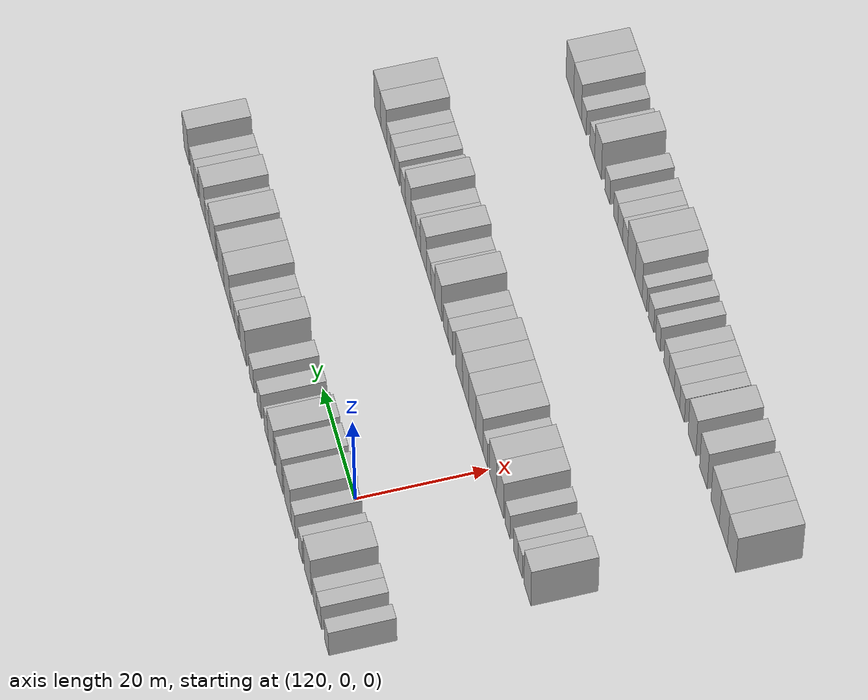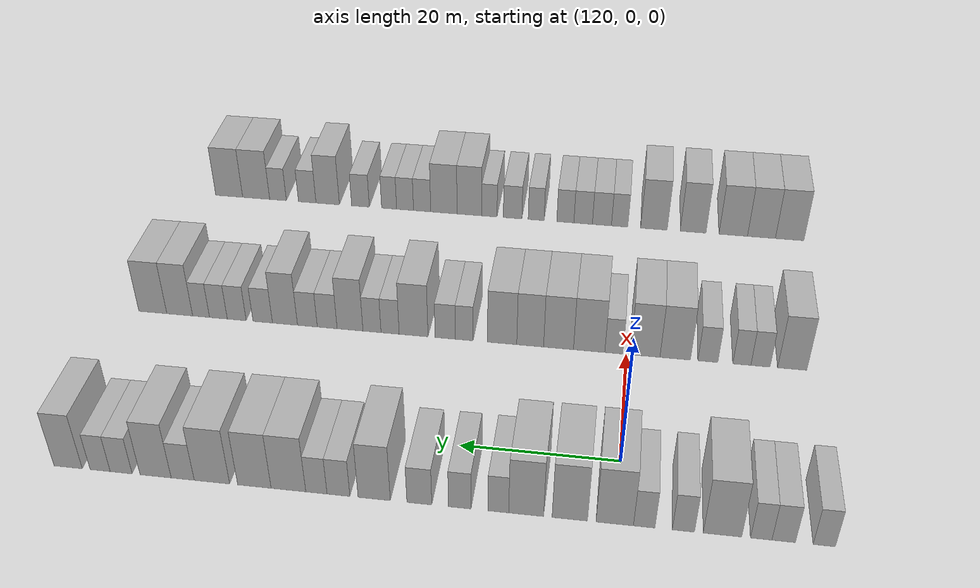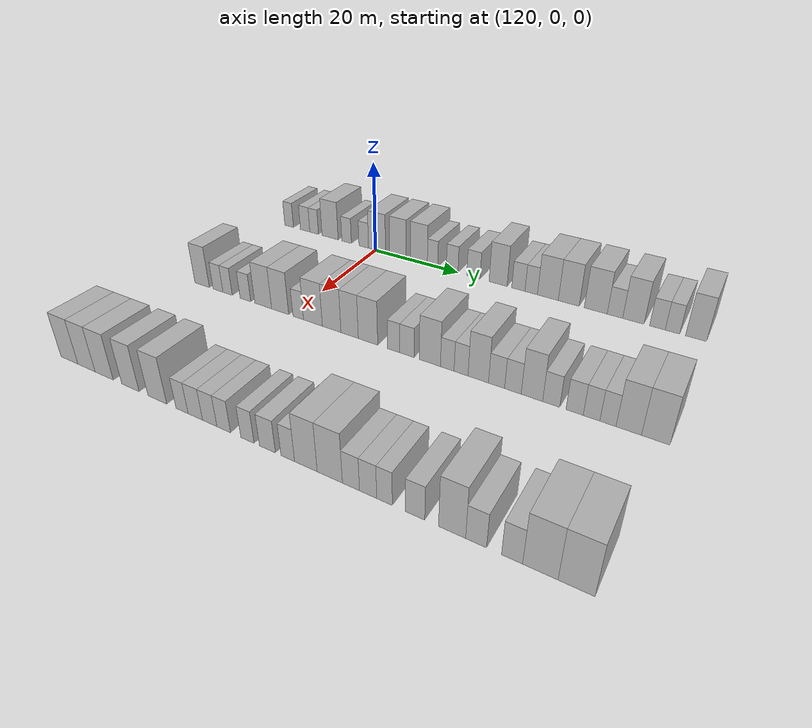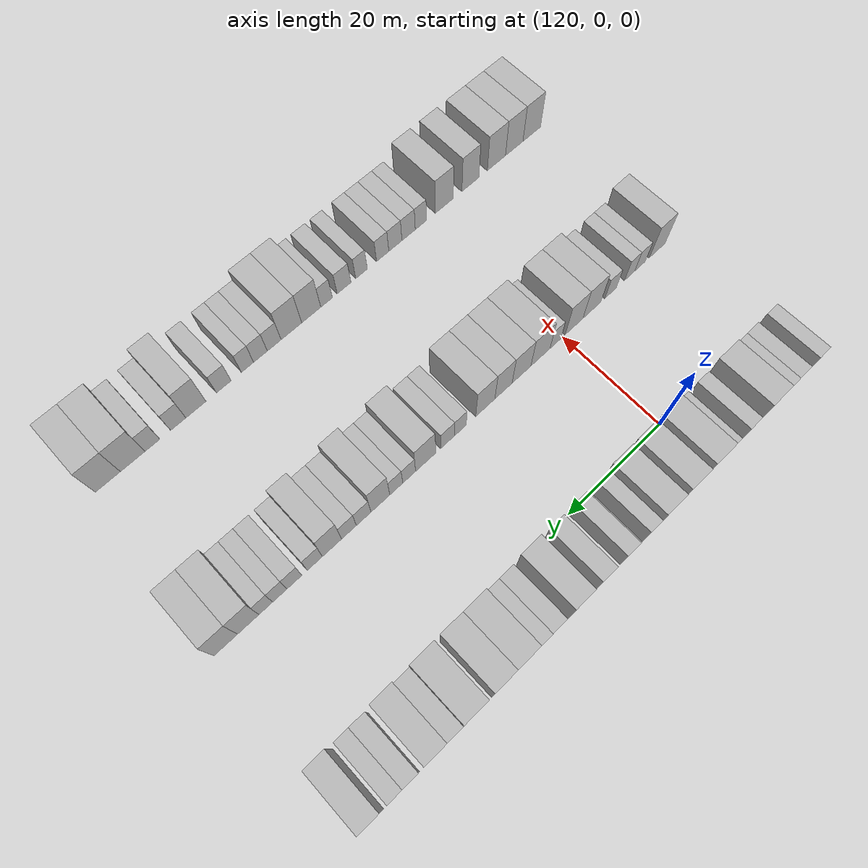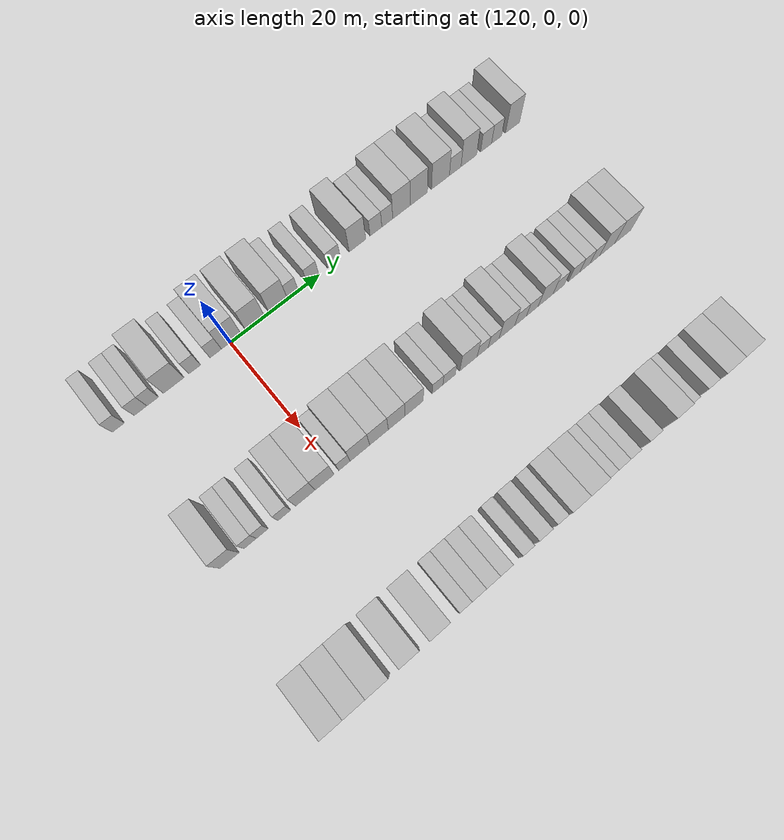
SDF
<sdf version="1.6">
 <world name="default">
  <model name="building_783">
   <static>1</static>
   <pose>115.0000 -23.6118 0 0.000000 0.000000 0.000000</pose>
   <link name="link">
    <pose>0 0 3.00 0 0 0</pose>
    <collision name="collision"><geometry><box><size>10.0000 2.4870 6.0000</size></box></geometry></collision>
    <visual name="visual">
     <cast_shadows>0</cast_shadows>
     <geometry><box><size>10.0000 2.4870 6.0000</size></box></geometry>
     <material>
      <script>
       <uri>model://HANNAS_wall/materials/scripts</uri>
       <uri>model://HANNAS_wall/materials/textures</uri>
       <name>vrc/HANNAS_wall</name>
      </script>
     </material>
    </visual>
   </link>
  </model>
  <model name="building_784">
   <static>1</static>
   <pose>115.0000 -19.0447 0 0.000000 0.000000 0.000000</pose>
   <link name="link">
    <pose>0 0 3.00 0 0 0</pose>
    <collision name="collision"><geometry><box><size>10.0000 2.6472 6.0000</size></box></geometry></collision>
    <visual name="visual">
     <cast_shadows>0</cast_shadows>
     <geometry><box><size>10.0000 2.6472 6.0000</size></box></geometry>
     <material>
      <script>
       <uri>model://HANNAS_wall/materials/scripts</uri>
       <uri>model://HANNAS_wall/materials/textures</uri>
       <name>vrc/HANNAS_wall</name>
      </script>
     </material>
    </visual>
   </link>
  </model>
  <model name="building_785">
   <static>1</static>
   <pose>115.0000 -16.5064 0 0.000000 0.000000 0.000000</pose>
   <link name="link">
    <pose>0 0 3.00 0 0 0</pose>
    <collision name="collision"><geometry><box><size>10.0000 2.4293 6.0000</size></box></geometry></collision>
    <visual name="visual">
     <cast_shadows>0</cast_shadows>
     <geometry><box><size>10.0000 2.4293 6.0000</size></box></geometry>
     <material>
      <script>
       <uri>model://HANNAS_wall/materials/scripts</uri>
       <uri>model://HANNAS_wall/materials/textures</uri>
       <name>vrc/HANNAS_wall</name>
      </script>
     </material>
    </visual>
   </link>
  </model>
  <model name="building_786">
   <static>1</static>
   <pose>115.0000 -12.0969 0 0.000000 0.000000 0.000000</pose>
   <link name="link">
    <pose>0 0 4.50 0 0 0</pose>
    <collision name="collision"><geometry><box><size>10.0000 4.3895 9.0000</size></box></geometry></collision>
    <visual name="visual">
     <cast_shadows>0</cast_shadows>
     <geometry><box><size>10.0000 4.3895 9.0000</size></box></geometry>
     <material>
      <script>
       <uri>model://HANNAS_wall/materials/scripts</uri>
       <uri>model://HANNAS_wall/materials/textures</uri>
       <name>vrc/HANNAS_wall</name>
      </script>
     </material>
    </visual>
   </link>
  </model>
  <model name="building_787">
   <static>1</static>
   <pose>115.0000 -7.6303 0 0.000000 0.000000 0.000000</pose>
   <link name="link">
    <pose>0 0 3.00 0 0 0</pose>
    <collision name="collision"><geometry><box><size>10.0000 2.5437 6.0000</size></box></geometry></collision>
    <visual name="visual">
     <cast_shadows>0</cast_shadows>
     <geometry><box><size>10.0000 2.5437 6.0000</size></box></geometry>
     <material>
      <script>
       <uri>model://HANNAS_wall/materials/scripts</uri>
       <uri>model://HANNAS_wall/materials/textures</uri>
       <name>vrc/HANNAS_wall</name>
      </script>
     </material>
    </visual>
   </link>
  </model>
  <model name="building_788">
   <static>1</static>
   <pose>115.0000 -3.1162 0 0.000000 0.000000 0.000000</pose>
   <link name="link">
    <pose>0 0 3.00 0 0 0</pose>
    <collision name="collision"><geometry><box><size>10.0000 2.4846 6.0000</size></box></geometry></collision>
    <visual name="visual">
     <cast_shadows>0</cast_shadows>
     <geometry><box><size>10.0000 2.4846 6.0000</size></box></geometry>
     <material>
      <script>
       <uri>model://HANNAS_wall/materials/scripts</uri>
       <uri>model://HANNAS_wall/materials/textures</uri>
       <name>vrc/HANNAS_wall</name>
      </script>
     </material>
    </visual>
   </link>
  </model>
  <model name="building_789">
   <static>1</static>
   <pose>115.0000 0.3010 0 0.000000 0.000000 0.000000</pose>
   <link name="link">
    <pose>0 0 4.50 0 0 0</pose>
    <collision name="collision"><geometry><box><size>10.0000 4.3496 9.0000</size></box></geometry></collision>
    <visual name="visual">
     <cast_shadows>0</cast_shadows>
     <geometry><box><size>10.0000 4.3496 9.0000</size></box></geometry>
     <material>
      <script>
       <uri>model://HANNAS_wall/materials/scripts</uri>
       <uri>model://HANNAS_wall/materials/textures</uri>
       <name>vrc/HANNAS_wall</name>
      </script>
     </material>
    </visual>
   </link>
  </model>
  <model name="building_790">
   <static>1</static>
   <pose>115.0000 5.5463 0 0.000000 0.000000 0.000000</pose>
   <link name="link">
    <pose>0 0 4.50 0 0 0</pose>
    <collision name="collision"><geometry><box><size>10.0000 4.1410 9.0000</size></box></geometry></collision>
    <visual name="visual">
     <cast_shadows>0</cast_shadows>
     <geometry><box><size>10.0000 4.1410 9.0000</size></box></geometry>
     <material>
      <script>
       <uri>model://HANNAS_wall/materials/scripts</uri>
       <uri>model://HANNAS_wall/materials/textures</uri>
       <name>vrc/HANNAS_wall</name>
      </script>
     </material>
    </visual>
   </link>
  </model>
  <model name="building_791">
   <static>1</static>
   <pose>115.0000 10.6769 0 0.000000 0.000000 0.000000</pose>
   <link name="link">
    <pose>0 0 4.50 0 0 0</pose>
    <collision name="collision"><geometry><box><size>10.0000 4.1203 9.0000</size></box></geometry></collision>
    <visual name="visual">
     <cast_shadows>0</cast_shadows>
     <geometry><box><size>10.0000 4.1203 9.0000</size></box></geometry>
     <material>
      <script>
       <uri>model://HANNAS_wall/materials/scripts</uri>
       <uri>model://HANNAS_wall/materials/textures</uri>
       <name>vrc/HANNAS_wall</name>
      </script>
     </material>
    </visual>
   </link>
  </model>
  <model name="building_792">
   <static>1</static>
   <pose>115.0000 13.9656 0 0.000000 0.000000 0.000000</pose>
   <link name="link">
    <pose>0 0 3.00 0 0 0</pose>
    <collision name="collision"><geometry><box><size>10.0000 2.4572 6.0000</size></box></geometry></collision>
    <visual name="visual">
     <cast_shadows>0</cast_shadows>
     <geometry><box><size>10.0000 2.4572 6.0000</size></box></geometry>
     <material>
      <script>
       <uri>model://HANNAS_wall/materials/scripts</uri>
       <uri>model://HANNAS_wall/materials/textures</uri>
       <name>vrc/HANNAS_wall</name>
      </script>
     </material>
    </visual>
   </link>
  </model>
  <model name="building_793">
   <static>1</static>
   <pose>115.0000 18.5430 0 0.000000 0.000000 0.000000</pose>
   <link name="link">
    <pose>0 0 3.00 0 0 0</pose>
    <collision name="collision"><geometry><box><size>10.0000 2.6975 6.0000</size></box></geometry></collision>
    <visual name="visual">
     <cast_shadows>0</cast_shadows>
     <geometry><box><size>10.0000 2.6975 6.0000</size></box></geometry>
     <material>
      <script>
       <uri>model://HANNAS_wall/materials/scripts</uri>
       <uri>model://HANNAS_wall/materials/textures</uri>
       <name>vrc/HANNAS_wall</name>
      </script>
     </material>
    </visual>
   </link>
  </model>
  <model name="building_794">
   <static>1</static>
   <pose>115.0000 23.3896 0 0.000000 0.000000 0.000000</pose>
   <link name="link">
    <pose>0 0 3.00 0 0 0</pose>
    <collision name="collision"><geometry><box><size>10.0000 2.9956 6.0000</size></box></geometry></collision>
    <visual name="visual">
     <cast_shadows>0</cast_shadows>
     <geometry><box><size>10.0000 2.9956 6.0000</size></box></geometry>
     <material>
      <script>
       <uri>model://HANNAS_wall/materials/scripts</uri>
       <uri>model://HANNAS_wall/materials/textures</uri>
       <name>vrc/HANNAS_wall</name>
      </script>
     </material>
    </visual>
   </link>
  </model>
  <model name="building_795">
   <static>1</static>
   <pose>115.0000 28.8420 0 0.000000 0.000000 0.000000</pose>
   <link name="link">
    <pose>0 0 4.50 0 0 0</pose>
    <collision name="collision"><geometry><box><size>10.0000 3.9093 9.0000</size></box></geometry></collision>
    <visual name="visual">
     <cast_shadows>0</cast_shadows>
     <geometry><box><size>10.0000 3.9093 9.0000</size></box></geometry>
     <material>
      <script>
       <uri>model://HANNAS_wall/materials/scripts</uri>
       <uri>model://HANNAS_wall/materials/textures</uri>
       <name>vrc/HANNAS_wall</name>
      </script>
     </material>
    </visual>
   </link>
  </model>
  <model name="building_796">
   <static>1</static>
   <pose>115.0000 33.1896 0 0.000000 0.000000 0.000000</pose>
   <link name="link">
    <pose>0 0 3.00 0 0 0</pose>
    <collision name="collision"><geometry><box><size>10.0000 2.7858 6.0000</size></box></geometry></collision>
    <visual name="visual">
     <cast_shadows>0</cast_shadows>
     <geometry><box><size>10.0000 2.7858 6.0000</size></box></geometry>
     <material>
      <script>
       <uri>model://HANNAS_wall/materials/scripts</uri>
       <uri>model://HANNAS_wall/materials/textures</uri>
       <name>vrc/HANNAS_wall</name>
      </script>
     </material>
    </visual>
   </link>
  </model>
  <model name="building_797">
   <static>1</static>
   <pose>115.0000 35.8846 0 0.000000 0.000000 0.000000</pose>
   <link name="link">
    <pose>0 0 3.00 0 0 0</pose>
    <collision name="collision"><geometry><box><size>10.0000 2.6044 6.0000</size></box></geometry></collision>
    <visual name="visual">
     <cast_shadows>0</cast_shadows>
     <geometry><box><size>10.0000 2.6044 6.0000</size></box></geometry>
     <material>
      <script>
       <uri>model://HANNAS_wall/materials/scripts</uri>
       <uri>model://HANNAS_wall/materials/textures</uri>
       <name>vrc/HANNAS_wall</name>
      </script>
     </material>
    </visual>
   </link>
  </model>
  <model name="building_798">
   <static>1</static>
   <pose>115.0000 39.3218 0 0.000000 0.000000 0.000000</pose>
   <link name="link">
    <pose>0 0 4.50 0 0 0</pose>
    <collision name="collision"><geometry><box><size>10.0000 4.2700 9.0000</size></box></geometry></collision>
    <visual name="visual">
     <cast_shadows>0</cast_shadows>
     <geometry><box><size>10.0000 4.2700 9.0000</size></box></geometry>
     <material>
      <script>
       <uri>model://HANNAS_wall/materials/scripts</uri>
       <uri>model://HANNAS_wall/materials/textures</uri>
       <name>vrc/HANNAS_wall</name>
      </script>
     </material>
    </visual>
   </link>
  </model>
  <model name="building_799">
   <static>1</static>
   <pose>115.0000 43.5281 0 0.000000 0.000000 0.000000</pose>
   <link name="link">
    <pose>0 0 4.50 0 0 0</pose>
    <collision name="collision"><geometry><box><size>10.0000 4.1426 9.0000</size></box></geometry></collision>
    <visual name="visual">
     <cast_shadows>0</cast_shadows>
     <geometry><box><size>10.0000 4.1426 9.0000</size></box></geometry>
     <material>
      <script>
       <uri>model://HANNAS_wall/materials/scripts</uri>
       <uri>model://HANNAS_wall/materials/textures</uri>
       <name>vrc/HANNAS_wall</name>
      </script>
     </material>
    </visual>
   </link>
  </model>
  <model name="building_800">
   <static>1</static>
   <pose>115.0000 48.8100 0 0.000000 0.000000 0.000000</pose>
   <link name="link">
    <pose>0 0 4.50 0 0 0</pose>
    <collision name="collision"><geometry><box><size>10.0000 4.4213 9.0000</size></box></geometry></collision>
    <visual name="visual">
     <cast_shadows>0</cast_shadows>
     <geometry><box><size>10.0000 4.4213 9.0000</size></box></geometry>
     <material>
      <script>
       <uri>model://HANNAS_wall/materials/scripts</uri>
       <uri>model://HANNAS_wall/materials/textures</uri>
       <name>vrc/HANNAS_wall</name>
      </script>
     </material>
    </visual>
   </link>
  </model>
  <model name="building_801">
   <static>1</static>
   <pose>115.0000 52.4700 0 0.000000 0.000000 0.000000</pose>
   <link name="link">
    <pose>0 0 3.00 0 0 0</pose>
    <collision name="collision"><geometry><box><size>10.0000 2.8988 6.0000</size></box></geometry></collision>
    <visual name="visual">
     <cast_shadows>0</cast_shadows>
     <geometry><box><size>10.0000 2.8988 6.0000</size></box></geometry>
     <material>
      <script>
       <uri>model://HANNAS_wall/materials/scripts</uri>
       <uri>model://HANNAS_wall/materials/textures</uri>
       <name>vrc/HANNAS_wall</name>
      </script>
     </material>
    </visual>
   </link>
  </model>
  <model name="building_802">
   <static>1</static>
   <pose>115.0000 55.8823 0 0.000000 0.000000 0.000000</pose>
   <link name="link">
    <pose>0 0 4.50 0 0 0</pose>
    <collision name="collision"><geometry><box><size>10.0000 3.9257 9.0000</size></box></geometry></collision>
    <visual name="visual">
     <cast_shadows>0</cast_shadows>
     <geometry><box><size>10.0000 3.9257 9.0000</size></box></geometry>
     <material>
      <script>
       <uri>model://HANNAS_wall/materials/scripts</uri>
       <uri>model://HANNAS_wall/materials/textures</uri>
       <name>vrc/HANNAS_wall</name>
      </script>
     </material>
    </visual>
   </link>
  </model>
  <model name="building_803">
   <static>1</static>
   <pose>115.0000 60.2391 0 0.000000 0.000000 0.000000</pose>
   <link name="link">
    <pose>0 0 3.00 0 0 0</pose>
    <collision name="collision"><geometry><box><size>10.0000 2.7879 6.0000</size></box></geometry></collision>
    <visual name="visual">
     <cast_shadows>0</cast_shadows>
     <geometry><box><size>10.0000 2.7879 6.0000</size></box></geometry>
     <material>
      <script>
       <uri>model://HANNAS_wall/materials/scripts</uri>
       <uri>model://HANNAS_wall/materials/textures</uri>
       <name>vrc/HANNAS_wall</name>
      </script>
     </material>
    </visual>
   </link>
  </model>
  <model name="building_804">
   <static>1</static>
   <pose>115.0000 62.9138 0 0.000000 0.000000 0.000000</pose>
   <link name="link">
    <pose>0 0 3.00 0 0 0</pose>
    <collision name="collision"><geometry><box><size>10.0000 2.5614 6.0000</size></box></geometry></collision>
    <visual name="visual">
     <cast_shadows>0</cast_shadows>
     <geometry><box><size>10.0000 2.5614 6.0000</size></box></geometry>
     <material>
      <script>
       <uri>model://HANNAS_wall/materials/scripts</uri>
       <uri>model://HANNAS_wall/materials/textures</uri>
       <name>vrc/HANNAS_wall</name>
      </script>
     </material>
    </visual>
   </link>
  </model>
  <model name="building_805">
   <static>1</static>
   <pose>115.0000 67.0020 0 0.000000 0.000000 0.000000</pose>
   <link name="link">
    <pose>0 0 4.50 0 0 0</pose>
    <collision name="collision"><geometry><box><size>10.0000 3.6151 9.0000</size></box></geometry></collision>
    <visual name="visual">
     <cast_shadows>0</cast_shadows>
     <geometry><box><size>10.0000 3.6151 9.0000</size></box></geometry>
     <material>
      <script>
       <uri>model://HANNAS_wall/materials/scripts</uri>
       <uri>model://HANNAS_wall/materials/textures</uri>
       <name>vrc/HANNAS_wall</name>
      </script>
     </material>
    </visual>
   </link>
  </model>
  <model name="building_1023">
   <static>1</static>
   <pose>145.0000 -22.1898 0 0.000000 0.000000 0.000000</pose>
   <link name="link">
    <pose>0 0 4.50 0 0 0</pose>
    <collision name="collision"><geometry><box><size>10.0000 3.8476 9.0000</size></box></geometry></collision>
    <visual name="visual">
     <cast_shadows>0</cast_shadows>
     <geometry><box><size>10.0000 3.8476 9.0000</size></box></geometry>
     <material>
      <script>
       <uri>model://HANNAS_wall/materials/scripts</uri>
       <uri>model://HANNAS_wall/materials/textures</uri>
       <name>vrc/HANNAS_wall</name>
      </script>
     </material>
    </visual>
   </link>
  </model>
  <model name="building_1024">
   <static>1</static>
   <pose>145.0000 -17.9942 0 0.000000 0.000000 0.000000</pose>
   <link name="link">
    <pose>0 0 3.00 0 0 0</pose>
    <collision name="collision"><geometry><box><size>10.0000 2.5436 6.0000</size></box></geometry></collision>
    <visual name="visual">
     <cast_shadows>0</cast_shadows>
     <geometry><box><size>10.0000 2.5436 6.0000</size></box></geometry>
     <material>
      <script>
       <uri>model://HANNAS_wall/materials/scripts</uri>
       <uri>model://HANNAS_wall/materials/textures</uri>
       <name>vrc/HANNAS_wall</name>
      </script>
     </material>
    </visual>
   </link>
  </model>
  <model name="building_1025">
   <static>1</static>
   <pose>145.0000 -15.5216 0 0.000000 0.000000 0.000000</pose>
   <link name="link">
    <pose>0 0 3.00 0 0 0</pose>
    <collision name="collision"><geometry><box><size>10.0000 2.4016 6.0000</size></box></geometry></collision>
    <visual name="visual">
     <cast_shadows>0</cast_shadows>
     <geometry><box><size>10.0000 2.4016 6.0000</size></box></geometry>
     <material>
      <script>
       <uri>model://HANNAS_wall/materials/scripts</uri>
       <uri>model://HANNAS_wall/materials/textures</uri>
       <name>vrc/HANNAS_wall</name>
      </script>
     </material>
    </visual>
   </link>
  </model>
  <model name="building_1026">
   <static>1</static>
   <pose>145.0000 -10.9884 0 0.000000 0.000000 0.000000</pose>
   <link name="link">
    <pose>0 0 3.00 0 0 0</pose>
    <collision name="collision"><geometry><box><size>10.0000 2.6649 6.0000</size></box></geometry></collision>
    <visual name="visual">
     <cast_shadows>0</cast_shadows>
     <geometry><box><size>10.0000 2.6649 6.0000</size></box></geometry>
     <material>
      <script>
       <uri>model://HANNAS_wall/materials/scripts</uri>
       <uri>model://HANNAS_wall/materials/textures</uri>
       <name>vrc/HANNAS_wall</name>
      </script>
     </material>
    </visual>
   </link>
  </model>
  <model name="building_1027">
   <static>1</static>
   <pose>145.0000 -6.6061 0 0.000000 0.000000 0.000000</pose>
   <link name="link">
    <pose>0 0 4.50 0 0 0</pose>
    <collision name="collision"><geometry><box><size>10.0000 4.0995 9.0000</size></box></geometry></collision>
    <visual name="visual">
     <cast_shadows>0</cast_shadows>
     <geometry><box><size>10.0000 4.0995 9.0000</size></box></geometry>
     <material>
      <script>
       <uri>model://HANNAS_wall/materials/scripts</uri>
       <uri>model://HANNAS_wall/materials/textures</uri>
       <name>vrc/HANNAS_wall</name>
      </script>
     </material>
    </visual>
   </link>
  </model>
  <model name="building_1028">
   <static>1</static>
   <pose>145.0000 -2.5347 0 0.000000 0.000000 0.000000</pose>
   <link name="link">
    <pose>0 0 4.50 0 0 0</pose>
    <collision name="collision"><geometry><box><size>10.0000 4.0433 9.0000</size></box></geometry></collision>
    <visual name="visual">
     <cast_shadows>0</cast_shadows>
     <geometry><box><size>10.0000 4.0433 9.0000</size></box></geometry>
     <material>
      <script>
       <uri>model://HANNAS_wall/materials/scripts</uri>
       <uri>model://HANNAS_wall/materials/textures</uri>
       <name>vrc/HANNAS_wall</name>
      </script>
     </material>
    </visual>
   </link>
  </model>
  <model name="building_1029">
   <static>1</static>
   <pose>145.0000 1.7051 0 0.000000 0.000000 0.000000</pose>
   <link name="link">
    <pose>0 0 3.00 0 0 0</pose>
    <collision name="collision"><geometry><box><size>10.0000 2.4363 6.0000</size></box></geometry></collision>
    <visual name="visual">
     <cast_shadows>0</cast_shadows>
     <geometry><box><size>10.0000 2.4363 6.0000</size></box></geometry>
     <material>
      <script>
       <uri>model://HANNAS_wall/materials/scripts</uri>
       <uri>model://HANNAS_wall/materials/textures</uri>
       <name>vrc/HANNAS_wall</name>
      </script>
     </material>
    </visual>
   </link>
  </model>
  <model name="building_1030">
   <static>1</static>
   <pose>145.0000 5.0571 0 0.000000 0.000000 0.000000</pose>
   <link name="link">
    <pose>0 0 4.50 0 0 0</pose>
    <collision name="collision"><geometry><box><size>10.0000 4.2678 9.0000</size></box></geometry></collision>
    <visual name="visual">
     <cast_shadows>0</cast_shadows>
     <geometry><box><size>10.0000 4.2678 9.0000</size></box></geometry>
     <material>
      <script>
       <uri>model://HANNAS_wall/materials/scripts</uri>
       <uri>model://HANNAS_wall/materials/textures</uri>
       <name>vrc/HANNAS_wall</name>
      </script>
     </material>
    </visual>
   </link>
  </model>
  <model name="building_1031">
   <static>1</static>
   <pose>145.0000 9.2409 0 0.000000 0.000000 0.000000</pose>
   <link name="link">
    <pose>0 0 4.50 0 0 0</pose>
    <collision name="collision"><geometry><box><size>10.0000 4.0998 9.0000</size></box></geometry></collision>
    <visual name="visual">
     <cast_shadows>0</cast_shadows>
     <geometry><box><size>10.0000 4.0998 9.0000</size></box></geometry>
     <material>
      <script>
       <uri>model://HANNAS_wall/materials/scripts</uri>
       <uri>model://HANNAS_wall/materials/textures</uri>
       <name>vrc/HANNAS_wall</name>
      </script>
     </material>
    </visual>
   </link>
  </model>
  <model name="building_1032">
   <static>1</static>
   <pose>145.0000 13.1464 0 0.000000 0.000000 0.000000</pose>
   <link name="link">
    <pose>0 0 4.50 0 0 0</pose>
    <collision name="collision"><geometry><box><size>10.0000 3.7112 9.0000</size></box></geometry></collision>
    <visual name="visual">
     <cast_shadows>0</cast_shadows>
     <geometry><box><size>10.0000 3.7112 9.0000</size></box></geometry>
     <material>
      <script>
       <uri>model://HANNAS_wall/materials/scripts</uri>
       <uri>model://HANNAS_wall/materials/textures</uri>
       <name>vrc/HANNAS_wall</name>
      </script>
     </material>
    </visual>
   </link>
  </model>
  <model name="building_1033">
   <static>1</static>
   <pose>145.0000 17.0282 0 0.000000 0.000000 0.000000</pose>
   <link name="link">
    <pose>0 0 4.50 0 0 0</pose>
    <collision name="collision"><geometry><box><size>10.0000 4.0523 9.0000</size></box></geometry></collision>
    <visual name="visual">
     <cast_shadows>0</cast_shadows>
     <geometry><box><size>10.0000 4.0523 9.0000</size></box></geometry>
     <material>
      <script>
       <uri>model://HANNAS_wall/materials/scripts</uri>
       <uri>model://HANNAS_wall/materials/textures</uri>
       <name>vrc/HANNAS_wall</name>
      </script>
     </material>
    </visual>
   </link>
  </model>
  <model name="building_1034">
   <static>1</static>
   <pose>145.0000 22.2870 0 0.000000 0.000000 0.000000</pose>
   <link name="link">
    <pose>0 0 3.00 0 0 0</pose>
    <collision name="collision"><geometry><box><size>10.0000 2.4654 6.0000</size></box></geometry></collision>
    <visual name="visual">
     <cast_shadows>0</cast_shadows>
     <geometry><box><size>10.0000 2.4654 6.0000</size></box></geometry>
     <material>
      <script>
       <uri>model://HANNAS_wall/materials/scripts</uri>
       <uri>model://HANNAS_wall/materials/textures</uri>
       <name>vrc/HANNAS_wall</name>
      </script>
     </material>
    </visual>
   </link>
  </model>
  <model name="building_1035">
   <static>1</static>
   <pose>145.0000 24.9403 0 0.000000 0.000000 0.000000</pose>
   <link name="link">
    <pose>0 0 3.00 0 0 0</pose>
    <collision name="collision"><geometry><box><size>10.0000 2.8412 6.0000</size></box></geometry></collision>
    <visual name="visual">
     <cast_shadows>0</cast_shadows>
     <geometry><box><size>10.0000 2.8412 6.0000</size></box></geometry>
     <material>
      <script>
       <uri>model://HANNAS_wall/materials/scripts</uri>
       <uri>model://HANNAS_wall/materials/textures</uri>
       <name>vrc/HANNAS_wall</name>
      </script>
     </material>
    </visual>
   </link>
  </model>
  <model name="building_1036">
   <static>1</static>
   <pose>145.0000 29.3949 0 0.000000 0.000000 0.000000</pose>
   <link name="link">
    <pose>0 0 4.50 0 0 0</pose>
    <collision name="collision"><geometry><box><size>10.0000 4.0679 9.0000</size></box></geometry></collision>
    <visual name="visual">
     <cast_shadows>0</cast_shadows>
     <geometry><box><size>10.0000 4.0679 9.0000</size></box></geometry>
     <material>
      <script>
       <uri>model://HANNAS_wall/materials/scripts</uri>
       <uri>model://HANNAS_wall/materials/textures</uri>
       <name>vrc/HANNAS_wall</name>
      </script>
     </material>
    </visual>
   </link>
  </model>
  <model name="building_1037">
   <static>1</static>
   <pose>145.0000 32.7107 0 0.000000 0.000000 0.000000</pose>
   <link name="link">
    <pose>0 0 3.00 0 0 0</pose>
    <collision name="collision"><geometry><box><size>10.0000 2.5638 6.0000</size></box></geometry></collision>
    <visual name="visual">
     <cast_shadows>0</cast_shadows>
     <geometry><box><size>10.0000 2.5638 6.0000</size></box></geometry>
     <material>
      <script>
       <uri>model://HANNAS_wall/materials/scripts</uri>
       <uri>model://HANNAS_wall/materials/textures</uri>
       <name>vrc/HANNAS_wall</name>
      </script>
     </material>
    </visual>
   </link>
  </model>
  <model name="building_1038">
   <static>1</static>
   <pose>145.0000 35.2747 0 0.000000 0.000000 0.000000</pose>
   <link name="link">
    <pose>0 0 3.00 0 0 0</pose>
    <collision name="collision"><geometry><box><size>10.0000 2.5641 6.0000</size></box></geometry></collision>
    <visual name="visual">
     <cast_shadows>0</cast_shadows>
     <geometry><box><size>10.0000 2.5641 6.0000</size></box></geometry>
     <material>
      <script>
       <uri>model://HANNAS_wall/materials/scripts</uri>
       <uri>model://HANNAS_wall/materials/textures</uri>
       <name>vrc/HANNAS_wall</name>
      </script>
     </material>
    </visual>
   </link>
  </model>
  <model name="building_1039">
   <static>1</static>
   <pose>145.0000 38.3998 0 0.000000 0.000000 0.000000</pose>
   <link name="link">
    <pose>0 0 4.50 0 0 0</pose>
    <collision name="collision"><geometry><box><size>10.0000 3.6859 9.0000</size></box></geometry></collision>
    <visual name="visual">
     <cast_shadows>0</cast_shadows>
     <geometry><box><size>10.0000 3.6859 9.0000</size></box></geometry>
     <material>
      <script>
       <uri>model://HANNAS_wall/materials/scripts</uri>
       <uri>model://HANNAS_wall/materials/textures</uri>
       <name>vrc/HANNAS_wall</name>
      </script>
     </material>
    </visual>
   </link>
  </model>
  <model name="building_1040">
   <static>1</static>
   <pose>145.0000 41.6597 0 0.000000 0.000000 0.000000</pose>
   <link name="link">
    <pose>0 0 3.00 0 0 0</pose>
    <collision name="collision"><geometry><box><size>10.0000 2.8339 6.0000</size></box></geometry></collision>
    <visual name="visual">
     <cast_shadows>0</cast_shadows>
     <geometry><box><size>10.0000 2.8339 6.0000</size></box></geometry>
     <material>
      <script>
       <uri>model://HANNAS_wall/materials/scripts</uri>
       <uri>model://HANNAS_wall/materials/textures</uri>
       <name>vrc/HANNAS_wall</name>
      </script>
     </material>
    </visual>
   </link>
  </model>
  <model name="building_1041">
   <static>1</static>
   <pose>145.0000 44.4978 0 0.000000 0.000000 0.000000</pose>
   <link name="link">
    <pose>0 0 3.00 0 0 0</pose>
    <collision name="collision"><geometry><box><size>10.0000 2.8422 6.0000</size></box></geometry></collision>
    <visual name="visual">
     <cast_shadows>0</cast_shadows>
     <geometry><box><size>10.0000 2.8422 6.0000</size></box></geometry>
     <material>
      <script>
       <uri>model://HANNAS_wall/materials/scripts</uri>
       <uri>model://HANNAS_wall/materials/textures</uri>
       <name>vrc/HANNAS_wall</name>
      </script>
     </material>
    </visual>
   </link>
  </model>
  <model name="building_1042">
   <static>1</static>
   <pose>145.0000 47.7236 0 0.000000 0.000000 0.000000</pose>
   <link name="link">
    <pose>0 0 4.50 0 0 0</pose>
    <collision name="collision"><geometry><box><size>10.0000 3.6095 9.0000</size></box></geometry></collision>
    <visual name="visual">
     <cast_shadows>0</cast_shadows>
     <geometry><box><size>10.0000 3.6095 9.0000</size></box></geometry>
     <material>
      <script>
       <uri>model://HANNAS_wall/materials/scripts</uri>
       <uri>model://HANNAS_wall/materials/textures</uri>
       <name>vrc/HANNAS_wall</name>
      </script>
     </material>
    </visual>
   </link>
  </model>
  <model name="building_1043">
   <static>1</static>
   <pose>145.0000 50.9333 0 0.000000 0.000000 0.000000</pose>
   <link name="link">
    <pose>0 0 3.00 0 0 0</pose>
    <collision name="collision"><geometry><box><size>10.0000 2.8099 6.0000</size></box></geometry></collision>
    <visual name="visual">
     <cast_shadows>0</cast_shadows>
     <geometry><box><size>10.0000 2.8099 6.0000</size></box></geometry>
     <material>
      <script>
       <uri>model://HANNAS_wall/materials/scripts</uri>
       <uri>model://HANNAS_wall/materials/textures</uri>
       <name>vrc/HANNAS_wall</name>
      </script>
     </material>
    </visual>
   </link>
  </model>
  <model name="building_1044">
   <static>1</static>
   <pose>145.0000 54.7132 0 0.000000 0.000000 0.000000</pose>
   <link name="link">
    <pose>0 0 3.00 0 0 0</pose>
    <collision name="collision"><geometry><box><size>10.0000 2.7500 6.0000</size></box></geometry></collision>
    <visual name="visual">
     <cast_shadows>0</cast_shadows>
     <geometry><box><size>10.0000 2.7500 6.0000</size></box></geometry>
     <material>
      <script>
       <uri>model://HANNAS_wall/materials/scripts</uri>
       <uri>model://HANNAS_wall/materials/textures</uri>
       <name>vrc/HANNAS_wall</name>
      </script>
     </material>
    </visual>
   </link>
  </model>
  <model name="building_1045">
   <static>1</static>
   <pose>145.0000 57.3823 0 0.000000 0.000000 0.000000</pose>
   <link name="link">
    <pose>0 0 3.00 0 0 0</pose>
    <collision name="collision"><geometry><box><size>10.0000 2.5880 6.0000</size></box></geometry></collision>
    <visual name="visual">
     <cast_shadows>0</cast_shadows>
     <geometry><box><size>10.0000 2.5880 6.0000</size></box></geometry>
     <material>
      <script>
       <uri>model://HANNAS_wall/materials/scripts</uri>
       <uri>model://HANNAS_wall/materials/textures</uri>
       <name>vrc/HANNAS_wall</name>
      </script>
     </material>
    </visual>
   </link>
  </model>
  <model name="building_1046">
   <static>1</static>
   <pose>145.0000 59.9116 0 0.000000 0.000000 0.000000</pose>
   <link name="link">
    <pose>0 0 3.00 0 0 0</pose>
    <collision name="collision"><geometry><box><size>10.0000 2.4707 6.0000</size></box></geometry></collision>
    <visual name="visual">
     <cast_shadows>0</cast_shadows>
     <geometry><box><size>10.0000 2.4707 6.0000</size></box></geometry>
     <material>
      <script>
       <uri>model://HANNAS_wall/materials/scripts</uri>
       <uri>model://HANNAS_wall/materials/textures</uri>
       <name>vrc/HANNAS_wall</name>
      </script>
     </material>
    </visual>
   </link>
  </model>
  <model name="building_1047">
   <static>1</static>
   <pose>145.0000 63.0459 0 0.000000 0.000000 0.000000</pose>
   <link name="link">
    <pose>0 0 4.50 0 0 0</pose>
    <collision name="collision"><geometry><box><size>10.0000 3.7981 9.0000</size></box></geometry></collision>
    <visual name="visual">
     <cast_shadows>0</cast_shadows>
     <geometry><box><size>10.0000 3.7981 9.0000</size></box></geometry>
     <material>
      <script>
       <uri>model://HANNAS_wall/materials/scripts</uri>
       <uri>model://HANNAS_wall/materials/textures</uri>
       <name>vrc/HANNAS_wall</name>
      </script>
     </material>
    </visual>
   </link>
  </model>
  <model name="building_1048">
   <static>1</static>
   <pose>145.0000 67.0099 0 0.000000 0.000000 0.000000</pose>
   <link name="link">
    <pose>0 0 4.50 0 0 0</pose>
    <collision name="collision"><geometry><box><size>10.0000 4.1299 9.0000</size></box></geometry></collision>
    <visual name="visual">
     <cast_shadows>0</cast_shadows>
     <geometry><box><size>10.0000 4.1299 9.0000</size></box></geometry>
     <material>
      <script>
       <uri>model://HANNAS_wall/materials/scripts</uri>
       <uri>model://HANNAS_wall/materials/textures</uri>
       <name>vrc/HANNAS_wall</name>
      </script>
     </material>
    </visual>
   </link>
  </model>
  <model name="building_1252">
   <static>1</static>
   <pose>175.0000 -23.9834 0 0.000000 0.000000 0.000000</pose>
   <link name="link">
    <pose>0 0 4.50 0 0 0</pose>
    <collision name="collision"><geometry><box><size>10.0000 4.2985 9.0000</size></box></geometry></collision>
    <visual name="visual">
     <cast_shadows>0</cast_shadows>
     <geometry><box><size>10.0000 4.2985 9.0000</size></box></geometry>
     <material>
      <script>
       <uri>model://HANNAS_wall/materials/scripts</uri>
       <uri>model://HANNAS_wall/materials/textures</uri>
       <name>vrc/HANNAS_wall</name>
      </script>
     </material>
    </visual>
   </link>
  </model>
  <model name="building_1253">
   <static>1</static>
   <pose>175.0000 -19.7172 0 0.000000 0.000000 0.000000</pose>
   <link name="link">
    <pose>0 0 4.50 0 0 0</pose>
    <collision name="collision"><geometry><box><size>10.0000 4.2338 9.0000</size></box></geometry></collision>
    <visual name="visual">
     <cast_shadows>0</cast_shadows>
     <geometry><box><size>10.0000 4.2338 9.0000</size></box></geometry>
     <material>
      <script>
       <uri>model://HANNAS_wall/materials/scripts</uri>
       <uri>model://HANNAS_wall/materials/textures</uri>
       <name>vrc/HANNAS_wall</name>
      </script>
     </material>
    </visual>
   </link>
  </model>
  <model name="building_1254">
   <static>1</static>
   <pose>175.0000 -15.4282 0 0.000000 0.000000 0.000000</pose>
   <link name="link">
    <pose>0 0 4.50 0 0 0</pose>
    <collision name="collision"><geometry><box><size>10.0000 4.3442 9.0000</size></box></geometry></collision>
    <visual name="visual">
     <cast_shadows>0</cast_shadows>
     <geometry><box><size>10.0000 4.3442 9.0000</size></box></geometry>
     <material>
      <script>
       <uri>model://HANNAS_wall/materials/scripts</uri>
       <uri>model://HANNAS_wall/materials/textures</uri>
       <name>vrc/HANNAS_wall</name>
      </script>
     </material>
    </visual>
   </link>
  </model>
  <model name="building_1255">
   <static>1</static>
   <pose>175.0000 -9.2750 0 0.000000 0.000000 0.000000</pose>
   <link name="link">
    <pose>0 0 4.50 0 0 0</pose>
    <collision name="collision"><geometry><box><size>10.0000 3.9623 9.0000</size></box></geometry></collision>
    <visual name="visual">
     <cast_shadows>0</cast_shadows>
     <geometry><box><size>10.0000 3.9623 9.0000</size></box></geometry>
     <material>
      <script>
       <uri>model://HANNAS_wall/materials/scripts</uri>
       <uri>model://HANNAS_wall/materials/textures</uri>
       <name>vrc/HANNAS_wall</name>
      </script>
     </material>
    </visual>
   </link>
  </model>
  <model name="building_1256">
   <static>1</static>
   <pose>175.0000 -3.2403 0 0.000000 0.000000 0.000000</pose>
   <link name="link">
    <pose>0 0 4.50 0 0 0</pose>
    <collision name="collision"><geometry><box><size>10.0000 4.1071 9.0000</size></box></geometry></collision>
    <visual name="visual">
     <cast_shadows>0</cast_shadows>
     <geometry><box><size>10.0000 4.1071 9.0000</size></box></geometry>
     <material>
      <script>
       <uri>model://HANNAS_wall/materials/scripts</uri>
       <uri>model://HANNAS_wall/materials/textures</uri>
       <name>vrc/HANNAS_wall</name>
      </script>
     </material>
    </visual>
   </link>
  </model>
  <model name="building_1257">
   <static>1</static>
   <pose>175.0000 2.0821 0 0.000000 0.000000 0.000000</pose>
   <link name="link">
    <pose>0 0 3.00 0 0 0</pose>
    <collision name="collision"><geometry><box><size>10.0000 2.5376 6.0000</size></box></geometry></collision>
    <visual name="visual">
     <cast_shadows>0</cast_shadows>
     <geometry><box><size>10.0000 2.5376 6.0000</size></box></geometry>
     <material>
      <script>
       <uri>model://HANNAS_wall/materials/scripts</uri>
       <uri>model://HANNAS_wall/materials/textures</uri>
       <name>vrc/HANNAS_wall</name>
      </script>
     </material>
    </visual>
   </link>
  </model>
  <model name="building_1258">
   <static>1</static>
   <pose>175.0000 4.8365 0 0.000000 0.000000 0.000000</pose>
   <link name="link">
    <pose>0 0 3.00 0 0 0</pose>
    <collision name="collision"><geometry><box><size>10.0000 2.9713 6.0000</size></box></geometry></collision>
    <visual name="visual">
     <cast_shadows>0</cast_shadows>
     <geometry><box><size>10.0000 2.9713 6.0000</size></box></geometry>
     <material>
      <script>
       <uri>model://HANNAS_wall/materials/scripts</uri>
       <uri>model://HANNAS_wall/materials/textures</uri>
       <name>vrc/HANNAS_wall</name>
      </script>
     </material>
    </visual>
   </link>
  </model>
  <model name="building_1259">
   <static>1</static>
   <pose>175.0000 7.7676 0 0.000000 0.000000 0.000000</pose>
   <link name="link">
    <pose>0 0 3.00 0 0 0</pose>
    <collision name="collision"><geometry><box><size>10.0000 2.8909 6.0000</size></box></geometry></collision>
    <visual name="visual">
     <cast_shadows>0</cast_shadows>
     <geometry><box><size>10.0000 2.8909 6.0000</size></box></geometry>
     <material>
      <script>
       <uri>model://HANNAS_wall/materials/scripts</uri>
       <uri>model://HANNAS_wall/materials/textures</uri>
       <name>vrc/HANNAS_wall</name>
      </script>
     </material>
    </visual>
   </link>
  </model>
  <model name="building_1260">
   <static>1</static>
   <pose>175.0000 10.5568 0 0.000000 0.000000 0.000000</pose>
   <link name="link">
    <pose>0 0 3.00 0 0 0</pose>
    <collision name="collision"><geometry><box><size>10.0000 2.6874 6.0000</size></box></geometry></collision>
    <visual name="visual">
     <cast_shadows>0</cast_shadows>
     <geometry><box><size>10.0000 2.6874 6.0000</size></box></geometry>
     <material>
      <script>
       <uri>model://HANNAS_wall/materials/scripts</uri>
       <uri>model://HANNAS_wall/materials/textures</uri>
       <name>vrc/HANNAS_wall</name>
      </script>
     </material>
    </visual>
   </link>
  </model>
  <model name="building_1261">
   <static>1</static>
   <pose>175.0000 15.1538 0 0.000000 0.000000 0.000000</pose>
   <link name="link">
    <pose>0 0 3.00 0 0 0</pose>
    <collision name="collision"><geometry><box><size>10.0000 2.5067 6.0000</size></box></geometry></collision>
    <visual name="visual">
     <cast_shadows>0</cast_shadows>
     <geometry><box><size>10.0000 2.5067 6.0000</size></box></geometry>
     <material>
      <script>
       <uri>model://HANNAS_wall/materials/scripts</uri>
       <uri>model://HANNAS_wall/materials/textures</uri>
       <name>vrc/HANNAS_wall</name>
      </script>
     </material>
    </visual>
   </link>
  </model>
  <model name="building_1262">
   <static>1</static>
   <pose>175.0000 18.8767 0 0.000000 0.000000 0.000000</pose>
   <link name="link">
    <pose>0 0 3.00 0 0 0</pose>
    <collision name="collision"><geometry><box><size>10.0000 2.9392 6.0000</size></box></geometry></collision>
    <visual name="visual">
     <cast_shadows>0</cast_shadows>
     <geometry><box><size>10.0000 2.9392 6.0000</size></box></geometry>
     <material>
      <script>
       <uri>model://HANNAS_wall/materials/scripts</uri>
       <uri>model://HANNAS_wall/materials/textures</uri>
       <name>vrc/HANNAS_wall</name>
      </script>
     </material>
    </visual>
   </link>
  </model>
  <model name="building_1263">
   <static>1</static>
   <pose>175.0000 22.5619 0 0.000000 0.000000 0.000000</pose>
   <link name="link">
    <pose>0 0 3.00 0 0 0</pose>
    <collision name="collision"><geometry><box><size>10.0000 2.4311 6.0000</size></box></geometry></collision>
    <visual name="visual">
     <cast_shadows>0</cast_shadows>
     <geometry><box><size>10.0000 2.4311 6.0000</size></box></geometry>
     <material>
      <script>
       <uri>model://HANNAS_wall/materials/scripts</uri>
       <uri>model://HANNAS_wall/materials/textures</uri>
       <name>vrc/HANNAS_wall</name>
      </script>
     </material>
    </visual>
   </link>
  </model>
  <model name="building_1264">
   <static>1</static>
   <pose>175.0000 25.7459 0 0.000000 0.000000 0.000000</pose>
   <link name="link">
    <pose>0 0 4.50 0 0 0</pose>
    <collision name="collision"><geometry><box><size>10.0000 3.9370 9.0000</size></box></geometry></collision>
    <visual name="visual">
     <cast_shadows>0</cast_shadows>
     <geometry><box><size>10.0000 3.9370 9.0000</size></box></geometry>
     <material>
      <script>
       <uri>model://HANNAS_wall/materials/scripts</uri>
       <uri>model://HANNAS_wall/materials/textures</uri>
       <name>vrc/HANNAS_wall</name>
      </script>
     </material>
    </visual>
   </link>
  </model>
  <model name="building_1265">
   <static>1</static>
   <pose>175.0000 29.8291 0 0.000000 0.000000 0.000000</pose>
   <link name="link">
    <pose>0 0 4.50 0 0 0</pose>
    <collision name="collision"><geometry><box><size>10.0000 4.2294 9.0000</size></box></geometry></collision>
    <visual name="visual">
     <cast_shadows>0</cast_shadows>
     <geometry><box><size>10.0000 4.2294 9.0000</size></box></geometry>
     <material>
      <script>
       <uri>model://HANNAS_wall/materials/scripts</uri>
       <uri>model://HANNAS_wall/materials/textures</uri>
       <name>vrc/HANNAS_wall</name>
      </script>
     </material>
    </visual>
   </link>
  </model>
  <model name="building_1266">
   <static>1</static>
   <pose>175.0000 33.3322 0 0.000000 0.000000 0.000000</pose>
   <link name="link">
    <pose>0 0 3.00 0 0 0</pose>
    <collision name="collision"><geometry><box><size>10.0000 2.7766 6.0000</size></box></geometry></collision>
    <visual name="visual">
     <cast_shadows>0</cast_shadows>
     <geometry><box><size>10.0000 2.7766 6.0000</size></box></geometry>
     <material>
      <script>
       <uri>model://HANNAS_wall/materials/scripts</uri>
       <uri>model://HANNAS_wall/materials/textures</uri>
       <name>vrc/HANNAS_wall</name>
      </script>
     </material>
    </visual>
   </link>
  </model>
  <model name="building_1267">
   <static>1</static>
   <pose>175.0000 36.0846 0 0.000000 0.000000 0.000000</pose>
   <link name="link">
    <pose>0 0 3.00 0 0 0</pose>
    <collision name="collision"><geometry><box><size>10.0000 2.7281 6.0000</size></box></geometry></collision>
    <visual name="visual">
     <cast_shadows>0</cast_shadows>
     <geometry><box><size>10.0000 2.7281 6.0000</size></box></geometry>
     <material>
      <script>
       <uri>model://HANNAS_wall/materials/scripts</uri>
       <uri>model://HANNAS_wall/materials/textures</uri>
       <name>vrc/HANNAS_wall</name>
      </script>
     </material>
    </visual>
   </link>
  </model>
  <model name="building_1268">
   <static>1</static>
   <pose>175.0000 38.6644 0 0.000000 0.000000 0.000000</pose>
   <link name="link">
    <pose>0 0 3.00 0 0 0</pose>
    <collision name="collision"><geometry><box><size>10.0000 2.4316 6.0000</size></box></geometry></collision>
    <visual name="visual">
     <cast_shadows>0</cast_shadows>
     <geometry><box><size>10.0000 2.4316 6.0000</size></box></geometry>
     <material>
      <script>
       <uri>model://HANNAS_wall/materials/scripts</uri>
       <uri>model://HANNAS_wall/materials/textures</uri>
       <name>vrc/HANNAS_wall</name>
      </script>
     </material>
    </visual>
   </link>
  </model>
  <model name="building_1269">
   <static>1</static>
   <pose>175.0000 43.3164 0 0.000000 0.000000 0.000000</pose>
   <link name="link">
    <pose>0 0 3.00 0 0 0</pose>
    <collision name="collision"><geometry><box><size>10.0000 2.8725 6.0000</size></box></geometry></collision>
    <visual name="visual">
     <cast_shadows>0</cast_shadows>
     <geometry><box><size>10.0000 2.8725 6.0000</size></box></geometry>
     <material>
      <script>
       <uri>model://HANNAS_wall/materials/scripts</uri>
       <uri>model://HANNAS_wall/materials/textures</uri>
       <name>vrc/HANNAS_wall</name>
      </script>
     </material>
    </visual>
   </link>
  </model>
  <model name="building_1270">
   <static>1</static>
   <pose>175.0000 48.6722 0 0.000000 0.000000 0.000000</pose>
   <link name="link">
    <pose>0 0 4.50 0 0 0</pose>
    <collision name="collision"><geometry><box><size>10.0000 3.8390 9.0000</size></box></geometry></collision>
    <visual name="visual">
     <cast_shadows>0</cast_shadows>
     <geometry><box><size>10.0000 3.8390 9.0000</size></box></geometry>
     <material>
      <script>
       <uri>model://HANNAS_wall/materials/scripts</uri>
       <uri>model://HANNAS_wall/materials/textures</uri>
       <name>vrc/HANNAS_wall</name>
      </script>
     </material>
    </visual>
   </link>
  </model>
  <model name="building_1271">
   <static>1</static>
   <pose>175.0000 52.0313 0 0.000000 0.000000 0.000000</pose>
   <link name="link">
    <pose>0 0 3.00 0 0 0</pose>
    <collision name="collision"><geometry><box><size>10.0000 2.8791 6.0000</size></box></geometry></collision>
    <visual name="visual">
     <cast_shadows>0</cast_shadows>
     <geometry><box><size>10.0000 2.8791 6.0000</size></box></geometry>
     <material>
      <script>
       <uri>model://HANNAS_wall/materials/scripts</uri>
       <uri>model://HANNAS_wall/materials/textures</uri>
       <name>vrc/HANNAS_wall</name>
      </script>
     </material>
    </visual>
   </link>
  </model>
  <model name="building_1272">
   <static>1</static>
   <pose>175.0000 56.8500 0 0.000000 0.000000 0.000000</pose>
   <link name="link">
    <pose>0 0 3.00 0 0 0</pose>
    <collision name="collision"><geometry><box><size>10.0000 2.7582 6.0000</size></box></geometry></collision>
    <visual name="visual">
     <cast_shadows>0</cast_shadows>
     <geometry><box><size>10.0000 2.7582 6.0000</size></box></geometry>
     <material>
      <script>
       <uri>model://HANNAS_wall/materials/scripts</uri>
       <uri>model://HANNAS_wall/materials/textures</uri>
       <name>vrc/HANNAS_wall</name>
      </script>
     </material>
    </visual>
   </link>
  </model>
  <model name="building_1273">
   <static>1</static>
   <pose>175.0000 60.4720 0 0.000000 0.000000 0.000000</pose>
   <link name="link">
    <pose>0 0 4.50 0 0 0</pose>
    <collision name="collision"><geometry><box><size>10.0000 4.4858 9.0000</size></box></geometry></collision>
    <visual name="visual">
     <cast_shadows>0</cast_shadows>
     <geometry><box><size>10.0000 4.4858 9.0000</size></box></geometry>
     <material>
      <script>
       <uri>model://HANNAS_wall/materials/scripts</uri>
       <uri>model://HANNAS_wall/materials/textures</uri>
       <name>vrc/HANNAS_wall</name>
      </script>
     </material>
    </visual>
   </link>
  </model>
  <model name="building_1274">
   <static>1</static>
   <pose>175.0000 64.9573 0 0.000000 0.000000 0.000000</pose>
   <link name="link">
    <pose>0 0 4.50 0 0 0</pose>
    <collision name="collision"><geometry><box><size>10.0000 4.4849 9.0000</size></box></geometry></collision>
    <visual name="visual">
     <cast_shadows>0</cast_shadows>
     <geometry><box><size>10.0000 4.4849 9.0000</size></box></geometry>
     <material>
      <script>
       <uri>model://HANNAS_wall/materials/scripts</uri>
       <uri>model://HANNAS_wall/materials/textures</uri>
       <name>vrc/HANNAS_wall</name>
      </script>
     </material>
    </visual>
   </link>
  </model>
 </world>
</sdf>
